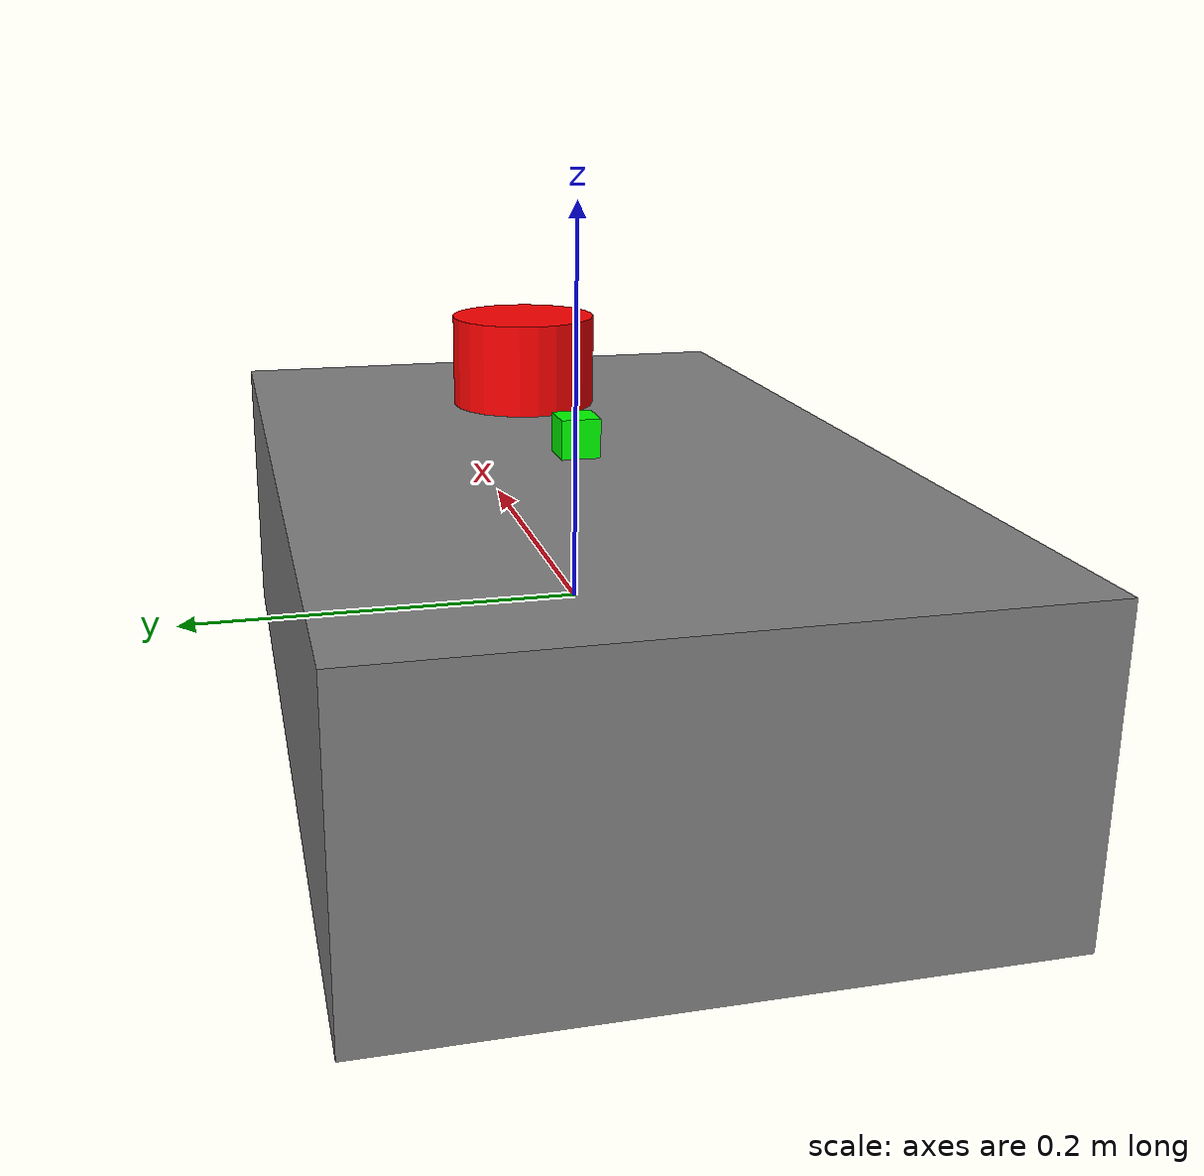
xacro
<?xml version="1.0"?>
<robot xmlns:xacro="http://www.ros.org/wiki/xacro" name="course_ackermann">

  <!-- ===== Параметризация ===== -->
  <xacro:property name="base_length" value="0.50"/>
  <xacro:property name="base_width"  value="0.30"/>
  <xacro:property name="base_height" value="0.15"/>
  <xacro:property name="base_mass"   value="5.0"/>

  <xacro:property name="wheel_radius" value="0.05"/>
  <xacro:property name="wheel_width"  value="0.04"/>
  <xacro:property name="wheel_mass"   value="0.3"/>
  <xacro:property name="track"        value="0.30"/>
  <xacro:property name="wheelbase"    value="0.35"/>

  <xacro:property name="lidar_radius" value="0.04"/>
  <xacro:property name="lidar_height" value="0.05"/>
  <xacro:property name="lidar_mass"   value="0.2"/>

  <xacro:property name="camera_size" value="0.04"/>
  <xacro:property name="camera_mass" value="0.1"/>

  <xacro:property name="imu_size" value="0.02"/>
  <xacro:property name="imu_mass" value="0.05"/>

  <!-- ===== base_link ===== -->
  <link name="base_link">
    <visual>
      <geometry><box size="${base_length} ${base_width} ${base_height}"/></geometry>
      <origin xyz="0 0 0" rpy="0 0 0"/>
      <material name="grey"><color rgba="0.5 0.5 0.5 1.0"/></material>
    </visual>
    <collision>
      <geometry><box size="${base_length} ${base_width} ${base_height}"/></geometry>
    </collision>
    <inertial>
      <mass value="${base_mass}"/>
      <inertia ixx="${(1.0/12.0)*base_mass*(base_width*base_width+base_height*base_height)}"
               iyy="${(1.0/12.0)*base_mass*(base_length*base_length+base_height*base_height)}"
               izz="${(1.0/12.0)*base_mass*(base_length*base_length+base_width*base_width)}"
               ixy="0" ixz="0" iyz="0"/>
    </inertial>
  </link>

  <!-- ===== lidar_link (parent: base_link) ===== -->
  <link name="lidar_link">
    <visual>
      <geometry><cylinder radius="${lidar_radius}" length="${lidar_height}"/></geometry>
      <material name="red"><color rgba="1 0 0 1"/></material>
    </visual>
    <collision>
      <geometry><cylinder radius="${lidar_radius}" length="${lidar_height}"/></geometry>
    </collision>
    <inertial>
      <mass value="${lidar_mass}"/>
      <inertia ixx="${(1.0/12.0)*lidar_mass*(3*lidar_radius*lidar_radius+lidar_height*lidar_height)}"
               iyy="${(1.0/12.0)*lidar_mass*(3*lidar_radius*lidar_radius+lidar_height*lidar_height)}"
               izz="${(1.0/2.0)*lidar_mass*lidar_radius*lidar_radius}"
               ixy="0" ixz="0" iyz="0"/>
    </inertial>
  </link>

  <joint name="lidar_joint" type="fixed">
    <parent link="base_link"/>
    <child link="lidar_link"/>
    <origin xyz="${wheelbase/2 - 0.05} 0 ${base_height/2 + lidar_height/2}" rpy="0 0 0"/>
  </joint>

  <!-- ===== camera_link (parent: base_link) ===== -->
  <link name="camera_link">
    <visual>
      <geometry><box size="${camera_size} ${camera_size} ${camera_size}"/></geometry>
      <material name="blue"><color rgba="0 0 1 1"/></material>
    </visual>
    <collision>
      <geometry><box size="${camera_size} ${camera_size} ${camera_size}"/></geometry>
    </collision>
    <inertial>
      <mass value="${camera_mass}"/>
      <inertia ixx="${(1.0/6.0)*camera_mass*camera_size*camera_size}"
               iyy="${(1.0/6.0)*camera_mass*camera_size*camera_size}"
               izz="${(1.0/6.0)*camera_mass*camera_size*camera_size}"
               ixy="0" ixz="0" iyz="0"/>
    </inertial>
  </link>

  <joint name="camera_joint" type="fixed">
    <parent link="base_link"/>
    <child link="camera_link"/>
    <origin xyz="${base_length/2} 0 0" rpy="0 0 0"/>
  </joint>

  <!-- ===== imu_link (parent: base_link) ===== -->
  <link name="imu_link">
    <visual>
      <geometry><box size="${imu_size} ${imu_size} ${imu_size}"/></geometry>
      <material name="green"><color rgba="0 1 0 1"/></material>
    </visual>
    <collision>
      <geometry><box size="${imu_size} ${imu_size} ${imu_size}"/></geometry>
    </collision>
    <inertial>
      <mass value="${imu_mass}"/>
      <inertia ixx="${(1.0/6.0)*imu_mass*imu_size*imu_size}"
               iyy="${(1.0/6.0)*imu_mass*imu_size*imu_size}"
               izz="${(1.0/6.0)*imu_mass*imu_size*imu_size}"
               ixy="0" ixz="0" iyz="0"/>
    </inertial>
  </link>

  <joint name="imu_joint" type="fixed">
    <parent link="base_link"/>
    <child link="imu_link"/>
    <origin xyz="0 0 ${base_height/2 + imu_size/2}" rpy="0 0 0"/>
  </joint>

</robot>
